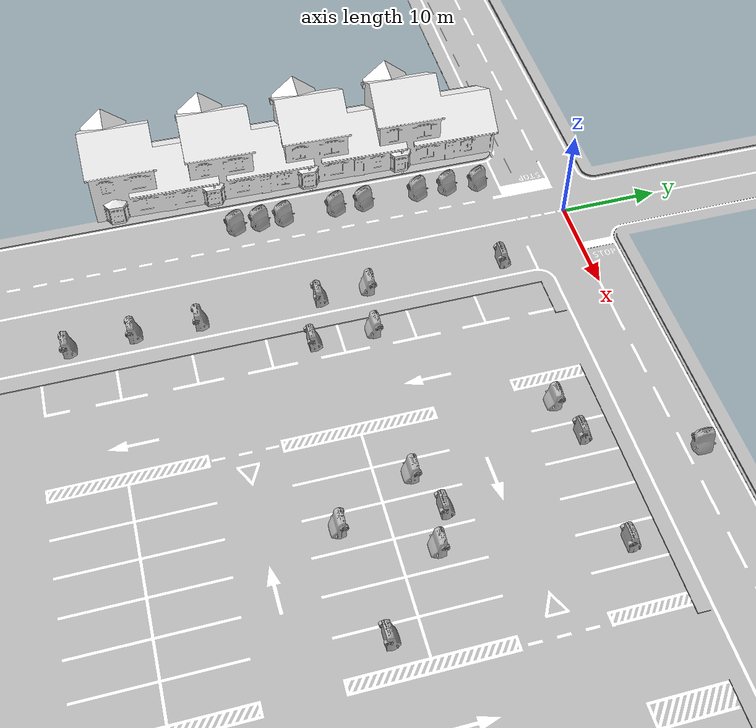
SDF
<sdf version="1.5">
 <world name="default">
  <scene><grid>false</grid></scene>
  <include><uri>model://sun</uri><pose>1.5 -30 100 0 0 0</pose></include>
  <include><uri>model://house_3</uri><name>house3</name><pose>-14 -10 0 0 0 1.55</pose></include>
  <include><uri>model://house_3</uri><name>house3_2</name><pose>-14 -20 0 0 0 1.55</pose></include>
  <include><uri>model://house_3</uri><name>house3_3</name><pose>-14 -30 0 0 0 1.55</pose></include>
  <include><uri>model://house_3</uri><name>house3_4</name><pose>-14 -40 0 0 0 1.55</pose></include>
  <include><uri>model://opel</uri><name>car1</name><pose>30 1.5 0 0 0 -1.57</pose></include>
  <include><uri>model://opel</uri><name>car2</name><pose>-6.5 -7.7 0 0 0 -1.14</pose></include>
  <include><uri>model://opel</uri><name>car3</name><pose>-6.7 -11 0 0 0 -1.14</pose></include>
  <include><uri>model://opel</uri><name>car4</name><pose>-6.7 -14.2 0 0 0 -1.14</pose></include>
  <include><uri>model://opel</uri><name>car5</name><pose>-6.7 -20 0 0 0 -1.14</pose></include>
  <include><uri>model://opel</uri><name>car6</name><pose>-6.7 -23 0 0 0 -1.14</pose></include>
  <include><uri>model://opel</uri><name>car7</name><pose>-6.7 -28.5 0 0 0 -1.14</pose></include>
  <include><uri>model://opel</uri><name>car8</name><pose>-6.7 -31 0 0 0 -1.14</pose></include>
  <include><uri>model://opel</uri><name>car9</name><pose>-6.7 -33.5 0 0 0 -1.14</pose></include>
  <include><uri>model://opel</uri><name>car10</name><pose>5.1 -9.1 0 0 0 -0.018</pose></include>
  <include><uri>model://opel</uri><name>car11</name><pose>5.23 -21.69 0 0 0 3.11</pose></include>
  <include><uri>model://opel</uri><name>car12</name><pose>5.3 -27.86 0 0 0 -0.04</pose></include>
  <include><uri>model://opel</uri><name>car13</name><pose>5.26 -39.56 0 0 0 -0.05</pose></include>
  <include><uri>model://opel</uri><name>car14</name><pose>5.14 -45.89 0 0 0 -0.05</pose></include>
  <include><uri>model://opel</uri><name>car15</name><pose>5.37 -52.07 0 0 0 -0.018</pose></include>
  <include><uri>model://opel</uri><name>car16</name><pose>22.8 -8.9 0 0 0 3.1415</pose></include>
  <include><uri>model://opel</uri><name>car17</name><pose>26.8 -9 0 0 0 0</pose></include>
  <include><uri>model://opel</uri><name>car18</name><pose>37.85 -9 0 0 0 0</pose></include>
  <include><uri>model://opel</uri><name>car19</name><pose>26.85 -23.5 0 0 0 3.1415</pose></include>
  <include><uri>model://opel</uri><name>car20</name><pose>30.9 -23 0 0 0 0</pose></include>
  <include><uri>model://opel</uri><name>car21</name><pose>34.3 -23.3 0 0 0 3.1415</pose></include>
  <include><uri>model://opel</uri><name>car22</name><pose>41 -30.6 0 0 0 0</pose></include>
  <include><uri>model://opel</uri><name>car23</name><pose>30.4 -30.85 0 0 0 3.1415</pose></include>
  <include><uri>model://opel</uri><name>car24</name><pose>10.5 -22.5 0 0 0 3.1415</pose></include>
  <include><uri>model://opel</uri><name>car25</name><pose>10.5 -29.67 0 0 0 0</pose></include>
  <include><uri>model://parking</uri><pose>0 0 0 0 0 -1.5708</pose></include>
 </world>
</sdf>

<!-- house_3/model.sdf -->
<sdf version="1.5">
  <model name="House 3">
    <static>true</static>
    <link name="link">
      <collision name="collision">
        <geometry>
          <mesh>
            <uri>model://house_3/meshes/house_3.dae</uri>
            <scale>1.5 1.5 1.5</scale>
          </mesh>
        </geometry>
      </collision>
      <visual name="visual">
        <geometry>
          <mesh>
            <uri>model://house_3/meshes/house_3.dae</uri>
            <scale>1.5 1.5 1.5</scale>
          </mesh>
        </geometry>
        <material>
          <diffuse>1.0 1.0 1.0 1.0</diffuse>
          <specular>0.0 0.0 0.0 1.0</specular>
          <pbr>
            <metal>
              <albedo_map>model://house_3/materials/textures/house_3.png</albedo_map>
            </metal>
          </pbr>
        </material>
      </visual>
    </link>
  </model>
</sdf>

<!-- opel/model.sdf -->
<sdf version="1.4">
<model name="opel">
  <pose>0 0 0.5 0 0 0</pose>
  <static>true</static>

  <link name="opel">
      <gravity>0</gravity> <!-- No hace falta gravedad para estático -->
      <collision name="collision">
          <geometry>
              <mesh>
                  <uri>model://opel/meshes/model.obj</uri>
              </mesh>
          </geometry>
      </collision>
      <visual name="visual">
          <geometry>
              <mesh>
                  <uri>model://opel/meshes/model.obj</uri>
              </mesh>
          </geometry>
      </visual>
  </link>

  <!-- Plugins de control o sensores no necesarios para estático -->

  <!-- Cámaras -->

</model>
</sdf>

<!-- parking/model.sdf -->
<sdf version="1.5">
  <model name="stop">
    <static>true</static>
    <link name="link">
      <collision name="collision">
        <geometry>
          <plane>
            <normal>0 0 1</normal>
            <size>100 100</size>
          </plane>
        </geometry>
      </collision>
      <visual name="visual">
        <geometry>
          <mesh>
	          <uri>model://parking/meshes/parking.dae</uri>
            <scale>1.3 1.3 1.3</scale>
          </mesh>
        </geometry>
      </visual>
    </link>
  </model>
</sdf>
